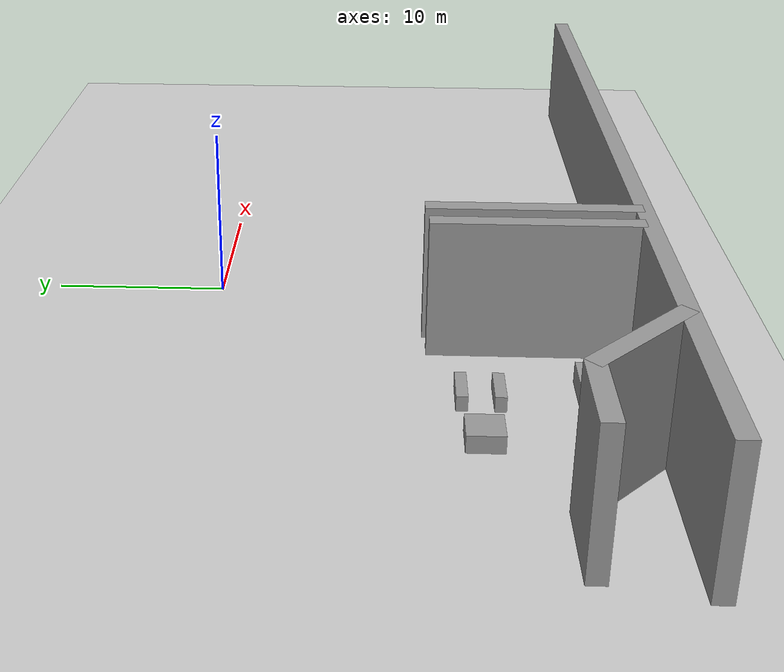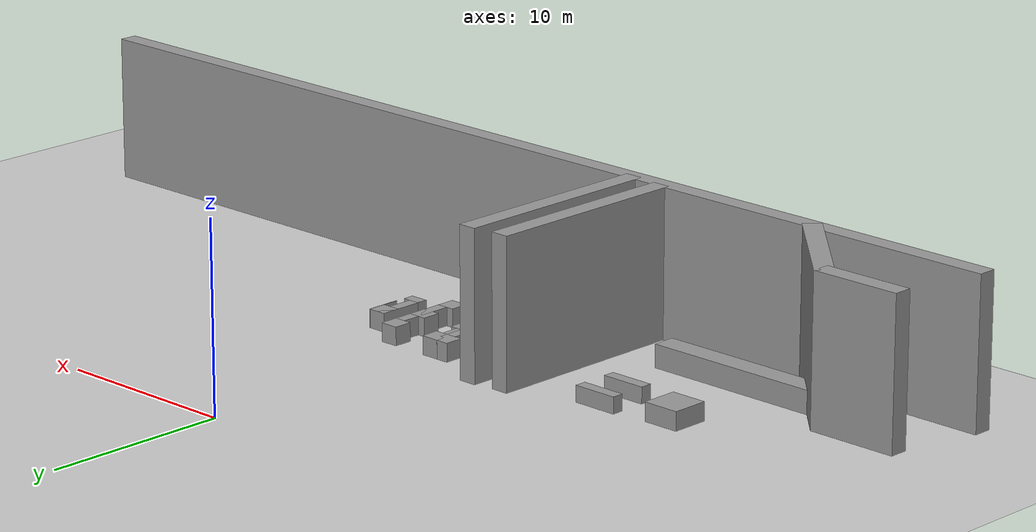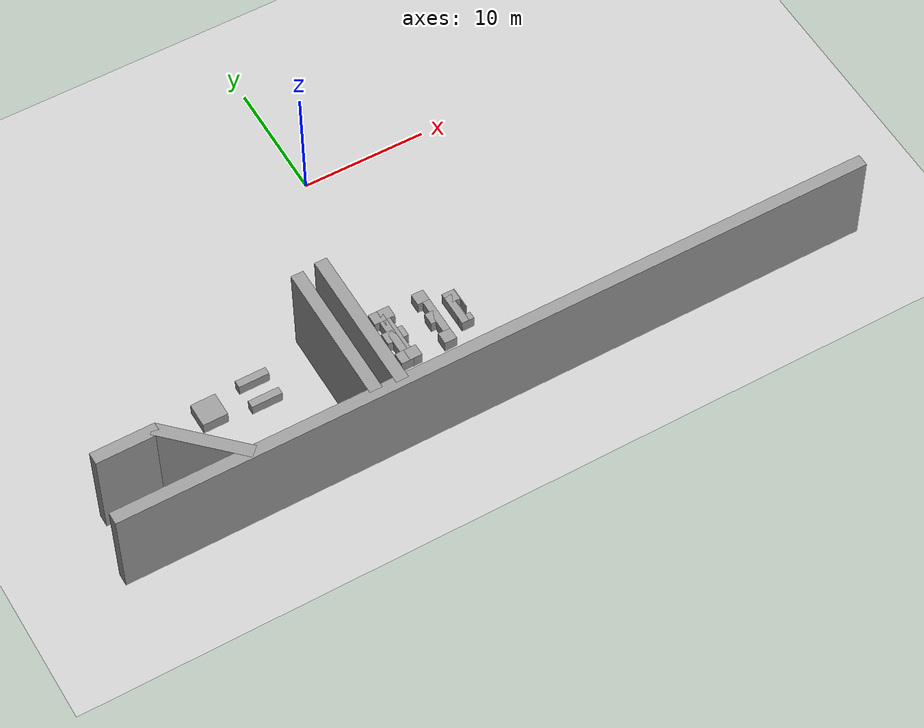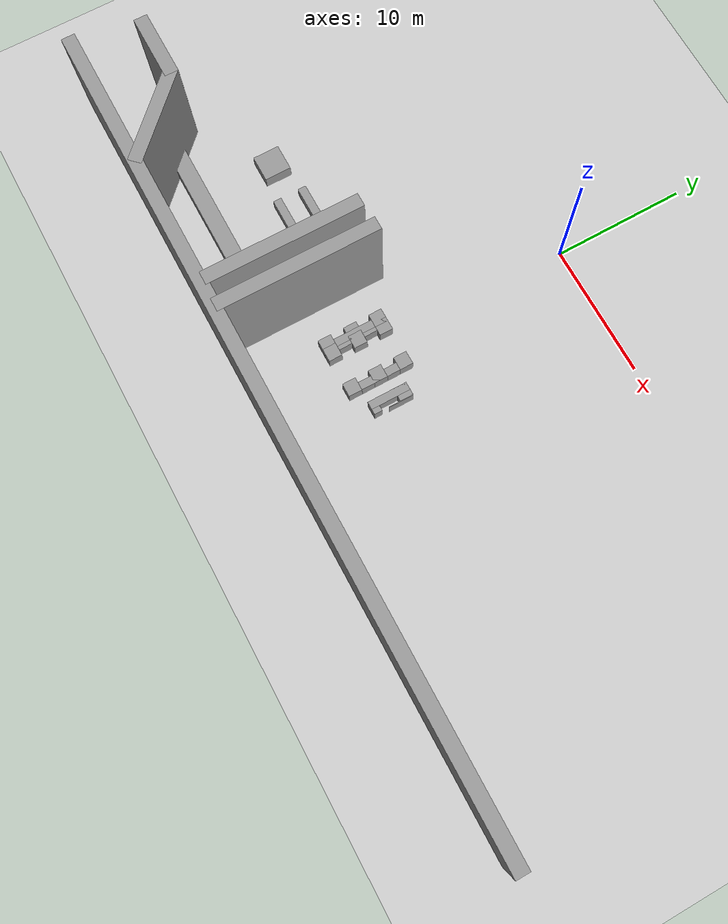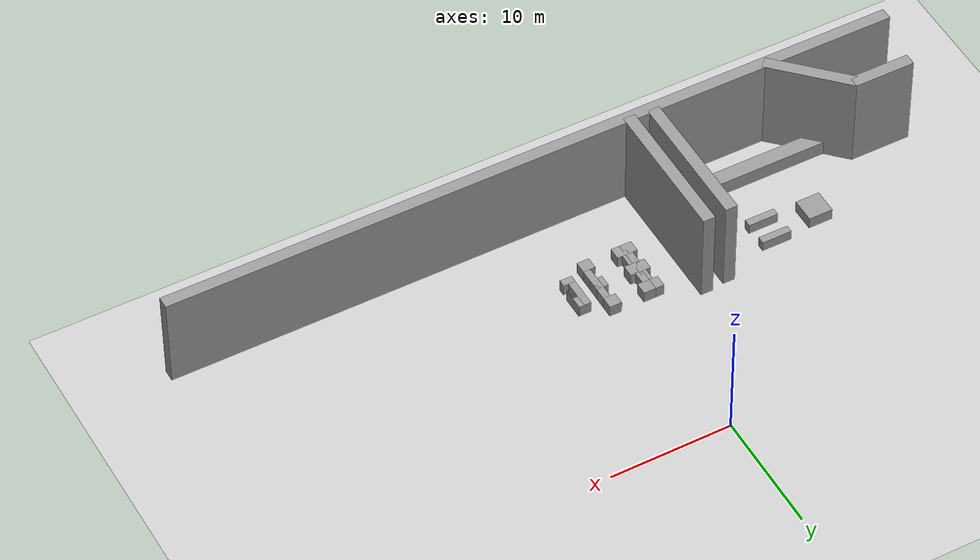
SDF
<sdf version="1.6">
 <world name="default">
  <model name="ground_plane">
   <static>1</static>
   <link name="link">
    <collision name="collision">
     <geometry><plane><normal>0 0 1</normal><size>100 100</size></plane></geometry>
     <surface>
      <contact><collide_bitmask>65535</collide_bitmask></contact>
      <friction><ode><mu>100</mu><mu2>50</mu2></ode></friction>
     </surface>
    </collision>
    <visual name="visual">
     <cast_shadows>0</cast_shadows>
     <geometry><plane><normal>0 0 1</normal><size>100 100</size></plane></geometry>
     <material>
      <script><uri>file://media/materials/scripts/gazebo.material</uri><name>Gazebo/Grey</name></script>
     </material>
    </visual>
   </link>
  </model>
  <model name="shelf_clone_clone_clone_clone_0_clone_clone_clone">
   <link name="link">
    <inertial>
     <mass>1</mass>
     <inertia>
      <ixx>0.166667</ixx>
      <ixy>0</ixy>
      <ixz>0</ixz>
      <iyy>0.166667</iyy>
      <iyz>0</iyz>
      <izz>0.166667</izz>
     </inertia>
    </inertial>
    <visual name="visual">
     <geometry><box><size>0.6246 2.46632 0.879745</size></box></geometry>
     <material>
      <script><name>Gazebo/Grey</name><uri>file://media/materials/scripts/gazebo.material</uri></script>
     </material>
    </visual>
    <collision name="collision">
     <geometry><box><size>0.6246 2.46632 0.879745</size></box></geometry>
     <surface>
      <friction>
       <ode><mu>1</mu><mu2>1</mu2><fdir1>0 0 0</fdir1><slip1>0</slip1><slip2>0</slip2></ode>
       <torsional>
        <coefficient>1</coefficient>
        <patch_radius>0</patch_radius>
        <surface_radius>0</surface_radius>
        <use_patch_radius>1</use_patch_radius>
        <ode><slip>0</slip></ode>
       </torsional>
      </friction>
      <bounce><restitution_coefficient>0</restitution_coefficient><threshold>1e+06</threshold></bounce>
      <contact>
       <collide_without_contact>0</collide_without_contact>
       <collide_without_contact_bitmask>1</collide_without_contact_bitmask>
       <collide_bitmask>1</collide_bitmask>
       <ode>
        <soft_cfm>0</soft_cfm>
        <soft_erp>0.2</soft_erp>
        <kp>1e+13</kp>
        <kd>1</kd>
        <max_vel>0.01</max_vel>
        <min_depth>0</min_depth>
       </ode>
       <bullet>
        <split_impulse>1</split_impulse>
        <split_impulse_penetration_threshold>-0.01</split_impulse_penetration_threshold>
        <soft_cfm>0</soft_cfm>
        <soft_erp>0.2</soft_erp>
        <kp>1e+13</kp>
        <kd>1</kd>
       </bullet>
      </contact>
     </surface>
    </collision>
   </link>
   <static>1</static>
   <pose>-12 -14 0.440412 0 0 -1.5708</pose>
  </model>
  <model name="shelf_clone_clone_clone_clone_0_clone_clone_clone_clone_0">
   <link name="link">
    <inertial>
     <mass>1</mass>
     <inertia>
      <ixx>0.166667</ixx>
      <ixy>0</ixy>
      <ixz>0</ixz>
      <iyy>0.166667</iyy>
      <iyz>0</iyz>
      <izz>0.166667</izz>
     </inertia>
    </inertial>
    <visual name="visual">
     <geometry><box><size>0.6246 2.46632 0.879745</size></box></geometry>
     <material>
      <script><name>Gazebo/Grey</name><uri>file://media/materials/scripts/gazebo.material</uri></script>
     </material>
    </visual>
    <collision name="collision">
     <geometry><box><size>0.6246 2.46632 0.879745</size></box></geometry>
     <surface>
      <friction>
       <ode><mu>1</mu><mu2>1</mu2><fdir1>0 0 0</fdir1><slip1>0</slip1><slip2>0</slip2></ode>
       <torsional>
        <coefficient>1</coefficient>
        <patch_radius>0</patch_radius>
        <surface_radius>0</surface_radius>
        <use_patch_radius>1</use_patch_radius>
        <ode><slip>0</slip></ode>
       </torsional>
      </friction>
      <bounce><restitution_coefficient>0</restitution_coefficient><threshold>1e+06</threshold></bounce>
      <contact>
       <collide_without_contact>0</collide_without_contact>
       <collide_without_contact_bitmask>1</collide_without_contact_bitmask>
       <collide_bitmask>1</collide_bitmask>
       <ode>
        <soft_cfm>0</soft_cfm>
        <soft_erp>0.2</soft_erp>
        <kp>1e+13</kp>
        <kd>1</kd>
        <max_vel>0.01</max_vel>
        <min_depth>0</min_depth>
       </ode>
       <bullet>
        <split_impulse>1</split_impulse>
        <split_impulse_penetration_threshold>-0.01</split_impulse_penetration_threshold>
        <soft_cfm>0</soft_cfm>
        <soft_erp>0.2</soft_erp>
        <kp>1e+13</kp>
        <kd>1</kd>
       </bullet>
      </contact>
     </surface>
    </collision>
   </link>
   <static>1</static>
   <pose>-12 -16 0.440412 0 0 -1.5708</pose>
  </model>
  <model name="Cube_3">
   <link name="link_1">
    <inertial>
     <mass>1</mass>
     <inertia>
      <ixx>0.166667</ixx>
      <ixy>0</ixy>
      <ixz>0</ixz>
      <iyy>0.166667</iyy>
      <iyz>0</iyz>
      <izz>0.166667</izz>
     </inertia>
    </inertial>
    <visual name="visual">
     <geometry><box><size>2 2 1</size></box></geometry>
     <material>
      <lighting>1</lighting>
      <script><uri>file://media/materials/scripts/gazebo.material</uri><name>Gazebo/Grey</name></script>
     </material>
    </visual>
    <collision name="collision">
     <geometry><box><size>2 2 1</size></box></geometry>
     <surface>
      <friction>
       <ode><mu>1</mu><mu2>1</mu2><fdir1>0 0 0</fdir1><slip1>0</slip1><slip2>0</slip2></ode>
       <torsional>
        <coefficient>1</coefficient>
        <patch_radius>0</patch_radius>
        <surface_radius>0</surface_radius>
        <use_patch_radius>1</use_patch_radius>
        <ode><slip>0</slip></ode>
       </torsional>
      </friction>
      <bounce><restitution_coefficient>0</restitution_coefficient><threshold>1e+06</threshold></bounce>
      <contact>
       <collide_without_contact>0</collide_without_contact>
       <collide_without_contact_bitmask>1</collide_without_contact_bitmask>
       <collide_bitmask>1</collide_bitmask>
       <ode>
        <soft_cfm>0</soft_cfm>
        <soft_erp>0.2</soft_erp>
        <kp>1e+13</kp>
        <kd>1</kd>
        <max_vel>0.01</max_vel>
        <min_depth>0</min_depth>
       </ode>
       <bullet>
        <split_impulse>1</split_impulse>
        <split_impulse_penetration_threshold>-0.01</split_impulse_penetration_threshold>
        <soft_cfm>0</soft_cfm>
        <soft_erp>0.2</soft_erp>
        <kp>1e+13</kp>
        <kd>1</kd>
       </bullet>
      </contact>
     </surface>
    </collision>
   </link>
   <static>1</static>
   <pose>-16 -15 0.495784 0 -0 0</pose>
  </model>
  <model name="wall1">
   <link name="link_0">
    <inertial>
     <mass>108.001</mass>
     <inertia><ixx>153</ixx><ixy>0</ixy><ixz>0</ixz><iyy>6705.03</iyy><iyz>0</iyz><izz>6570.03</izz></inertia>
    </inertial>
    <visual name="visual">
     <geometry><box><size>60.9879 1 7.99998</size></box></geometry>
     <material>
      <lighting>1</lighting>
      <script><uri>file://media/materials/scripts/gazebo.material</uri><name>Gazebo/Grey</name></script>
     </material>
    </visual>
    <collision name="collision">
     <geometry><box><size>60.9879 1 7.99998</size></box></geometry>
     <surface>
      <friction>
       <ode><mu>1</mu><mu2>1</mu2><fdir1>0 0 0</fdir1><slip1>0</slip1><slip2>0</slip2></ode>
       <torsional>
        <coefficient>1</coefficient>
        <patch_radius>0</patch_radius>
        <surface_radius>0</surface_radius>
        <use_patch_radius>1</use_patch_radius>
        <ode><slip>0</slip></ode>
       </torsional>
      </friction>
      <bounce><restitution_coefficient>0</restitution_coefficient><threshold>1e+06</threshold></bounce>
      <contact>
       <collide_without_contact>0</collide_without_contact>
       <collide_without_contact_bitmask>1</collide_without_contact_bitmask>
       <collide_bitmask>1</collide_bitmask>
       <ode>
        <soft_cfm>0</soft_cfm>
        <soft_erp>0.2</soft_erp>
        <kp>1e+13</kp>
        <kd>1</kd>
        <max_vel>0.01</max_vel>
        <min_depth>0</min_depth>
       </ode>
       <bullet>
        <split_impulse>1</split_impulse>
        <split_impulse_penetration_threshold>-0.01</split_impulse_penetration_threshold>
        <soft_cfm>0</soft_cfm>
        <soft_erp>0.2</soft_erp>
        <kp>1e+13</kp>
        <kd>1</kd>
       </bullet>
      </contact>
     </surface>
    </collision>
   </link>
   <static>1</static>
   <pose>3 -24 4 0 -0 0</pose>
  </model>
  <model name="tall_shelf_0_clone_clone_clone">
   <link name="link_0">
    <inertial>
     <mass>32</mass>
     <inertia><ixx>45.3334</ixx><ixy>0</ixy><ixz>0</ixz><iyy>213.334</iyy><iyz>0</iyz><izz>173.334</izz></inertia>
    </inertial>
    <visual name="visual">
     <geometry><box><size>7.3553 1 8</size></box></geometry>
     <material>
      <lighting>1</lighting>
      <script><uri>file://media/materials/scripts/gazebo.material</uri><name>Gazebo/Grey</name></script>
     </material>
    </visual>
    <collision name="collision">
     <geometry><box><size>7.3553 1 8</size></box></geometry>
     <surface>
      <friction>
       <ode><mu>1</mu><mu2>1</mu2><fdir1>0 0 0</fdir1><slip1>0</slip1><slip2>0</slip2></ode>
       <torsional>
        <coefficient>1</coefficient>
        <patch_radius>0</patch_radius>
        <surface_radius>0</surface_radius>
        <use_patch_radius>1</use_patch_radius>
        <ode><slip>0</slip></ode>
       </torsional>
      </friction>
      <bounce><restitution_coefficient>0</restitution_coefficient><threshold>1e+06</threshold></bounce>
      <contact>
       <collide_without_contact>0</collide_without_contact>
       <collide_without_contact_bitmask>1</collide_without_contact_bitmask>
       <collide_bitmask>1</collide_bitmask>
       <ode>
        <soft_cfm>0</soft_cfm>
        <soft_erp>0.2</soft_erp>
        <kp>1e+13</kp>
        <kd>1</kd>
        <max_vel>0.01</max_vel>
        <min_depth>0</min_depth>
       </ode>
       <bullet>
        <split_impulse>1</split_impulse>
        <split_impulse_penetration_threshold>-0.01</split_impulse_penetration_threshold>
        <soft_cfm>0</soft_cfm>
        <soft_erp>0.2</soft_erp>
        <kp>1e+13</kp>
        <kd>1</kd>
       </bullet>
      </contact>
     </surface>
    </collision>
   </link>
   <static>1</static>
   <pose>-19.2512 -21.458 4 0 0 -0.785404</pose>
  </model>
  <model name="tall_shelf_0_clone_clone_clone_clone">
   <link name="link_0">
    <inertial>
     <mass>32</mass>
     <inertia><ixx>45.3334</ixx><ixy>0</ixy><ixz>0</ixz><iyy>213.334</iyy><iyz>0</iyz><izz>173.334</izz></inertia>
    </inertial>
    <visual name="visual">
     <geometry><box><size>5.00409 1 8</size></box></geometry>
     <material>
      <lighting>1</lighting>
      <script><uri>file://media/materials/scripts/gazebo.material</uri><name>Gazebo/Grey</name></script>
     </material>
    </visual>
    <collision name="collision">
     <geometry><box><size>5.00409 1 8</size></box></geometry>
     <surface>
      <friction>
       <ode><mu>1</mu><mu2>1</mu2><fdir1>0 0 0</fdir1><slip1>0</slip1><slip2>0</slip2></ode>
       <torsional>
        <coefficient>1</coefficient>
        <patch_radius>0</patch_radius>
        <surface_radius>0</surface_radius>
        <use_patch_radius>1</use_patch_radius>
        <ode><slip>0</slip></ode>
       </torsional>
      </friction>
      <bounce><restitution_coefficient>0</restitution_coefficient><threshold>1e+06</threshold></bounce>
      <contact>
       <collide_without_contact>0</collide_without_contact>
       <collide_without_contact_bitmask>1</collide_without_contact_bitmask>
       <collide_bitmask>1</collide_bitmask>
       <ode>
        <soft_cfm>0</soft_cfm>
        <soft_erp>0.2</soft_erp>
        <kp>1e+13</kp>
        <kd>1</kd>
        <max_vel>0.01</max_vel>
        <min_depth>0</min_depth>
       </ode>
       <bullet>
        <split_impulse>1</split_impulse>
        <split_impulse_penetration_threshold>-0.01</split_impulse_penetration_threshold>
        <soft_cfm>0</soft_cfm>
        <soft_erp>0.2</soft_erp>
        <kp>1e+13</kp>
        <kd>1</kd>
       </bullet>
      </contact>
     </surface>
    </collision>
   </link>
   <static>1</static>
   <pose>-24 -19 4 0 0 -6e-06</pose>
  </model>
  <model name="wall2_0_clone">
   <link name="link_0">
    <inertial>
     <mass>92.0004</mass>
     <inertia><ixx>4178.36</ixx><ixy>0</ixy><ixz>0</ixz><iyy>130.334</iyy><iyz>0</iyz><izz>4063.36</izz></inertia>
    </inertial>
    <visual name="visual">
     <geometry><box><size>1 11.5424 8</size></box></geometry>
     <material>
      <lighting>1</lighting>
      <script><uri>file://media/materials/scripts/gazebo.material</uri><name>Gazebo/Grey</name></script>
     </material>
    </visual>
    <collision name="collision">
     <geometry><box><size>1 11.5424 8</size></box></geometry>
     <surface>
      <friction>
       <ode><mu>1</mu><mu2>1</mu2><fdir1>0 0 0</fdir1><slip1>0</slip1><slip2>0</slip2></ode>
       <torsional>
        <coefficient>1</coefficient>
        <patch_radius>0</patch_radius>
        <surface_radius>0</surface_radius>
        <use_patch_radius>1</use_patch_radius>
        <ode><slip>0</slip></ode>
       </torsional>
      </friction>
      <bounce><restitution_coefficient>0</restitution_coefficient><threshold>1e+06</threshold></bounce>
      <contact>
       <collide_without_contact>0</collide_without_contact>
       <collide_without_contact_bitmask>1</collide_without_contact_bitmask>
       <collide_bitmask>1</collide_bitmask>
       <ode>
        <soft_cfm>0</soft_cfm>
        <soft_erp>0.2</soft_erp>
        <kp>1e+13</kp>
        <kd>1</kd>
        <max_vel>0.01</max_vel>
        <min_depth>0</min_depth>
       </ode>
       <bullet>
        <split_impulse>1</split_impulse>
        <split_impulse_penetration_threshold>-0.01</split_impulse_penetration_threshold>
        <soft_cfm>0</soft_cfm>
        <soft_erp>0.2</soft_erp>
        <kp>1e+13</kp>
        <kd>1</kd>
       </bullet>
      </contact>
     </surface>
    </collision>
   </link>
   <static>1</static>
   <pose>-7 -18.0297 4 0 -0 0</pose>
  </model>
  <model name="wall2_0_clone_0">
   <link name="link_0">
    <inertial>
     <mass>92.0004</mass>
     <inertia><ixx>4178.36</ixx><ixy>0</ixy><ixz>0</ixz><iyy>130.334</iyy><iyz>0</iyz><izz>4063.36</izz></inertia>
    </inertial>
    <visual name="visual">
     <geometry><box><size>1 11.9104 8</size></box></geometry>
     <material>
      <lighting>1</lighting>
      <script><uri>file://media/materials/scripts/gazebo.material</uri><name>Gazebo/Grey</name></script>
     </material>
    </visual>
    <collision name="collision">
     <geometry><box><size>1 11.9104 8</size></box></geometry>
     <surface>
      <friction>
       <ode><mu>1</mu><mu2>1</mu2><fdir1>0 0 0</fdir1><slip1>0</slip1><slip2>0</slip2></ode>
       <torsional>
        <coefficient>1</coefficient>
        <patch_radius>0</patch_radius>
        <surface_radius>0</surface_radius>
        <use_patch_radius>1</use_patch_radius>
        <ode><slip>0</slip></ode>
       </torsional>
      </friction>
      <bounce><restitution_coefficient>0</restitution_coefficient><threshold>1e+06</threshold></bounce>
      <contact>
       <collide_without_contact>0</collide_without_contact>
       <collide_without_contact_bitmask>1</collide_without_contact_bitmask>
       <collide_bitmask>1</collide_bitmask>
       <ode>
        <soft_cfm>0</soft_cfm>
        <soft_erp>0.2</soft_erp>
        <kp>1e+13</kp>
        <kd>1</kd>
        <max_vel>0.01</max_vel>
        <min_depth>0</min_depth>
       </ode>
       <bullet>
        <split_impulse>1</split_impulse>
        <split_impulse_penetration_threshold>-0.01</split_impulse_penetration_threshold>
        <soft_cfm>0</soft_cfm>
        <soft_erp>0.2</soft_erp>
        <kp>1e+13</kp>
        <kd>1</kd>
       </bullet>
      </contact>
     </surface>
    </collision>
   </link>
   <static>1</static>
   <pose>-5 -18.0229 4 0 -0 0</pose>
  </model>
  <model name="checkout_lane_clone_3">
   <link name="link_0">
    <inertial>
     <mass>1.78918</mass>
     <inertia><ixx>1.49098</ixx><ixy>0</ixy><ixz>0</ixz><iyy>0.202135</iyy><iyz>0</iyz><izz>1.39492</izz></inertia>
    </inertial>
    <pose>-0.28217 -0.089875 0 0 -0 0</pose>
    <visual name="visual">
     <geometry><box><size>0.596422 3 1</size></box></geometry>
     <material>
      <lighting>1</lighting>
      <script><uri>file://media/materials/scripts/gazebo.material</uri><name>Gazebo/Grey</name></script>
     </material>
    </visual>
    <collision name="collision">
     <geometry><box><size>0.596422 3 1</size></box></geometry>
     <surface>
      <friction>
       <ode><mu>1</mu><mu2>1</mu2><fdir1>0 0 0</fdir1><slip1>0</slip1><slip2>0</slip2></ode>
       <torsional>
        <coefficient>1</coefficient>
        <patch_radius>0</patch_radius>
        <surface_radius>0</surface_radius>
        <use_patch_radius>1</use_patch_radius>
        <ode><slip>0</slip></ode>
       </torsional>
      </friction>
      <bounce><restitution_coefficient>0</restitution_coefficient><threshold>1e+06</threshold></bounce>
      <contact>
       <collide_without_contact>0</collide_without_contact>
       <collide_without_contact_bitmask>1</collide_without_contact_bitmask>
       <collide_bitmask>1</collide_bitmask>
       <ode>
        <soft_cfm>0</soft_cfm>
        <soft_erp>0.2</soft_erp>
        <kp>1e+13</kp>
        <kd>1</kd>
        <max_vel>0.01</max_vel>
        <min_depth>0</min_depth>
       </ode>
       <bullet>
        <split_impulse>1</split_impulse>
        <split_impulse_penetration_threshold>-0.01</split_impulse_penetration_threshold>
        <soft_cfm>0</soft_cfm>
        <soft_erp>0.2</soft_erp>
        <kp>1e+13</kp>
        <kd>1</kd>
       </bullet>
      </contact>
     </surface>
    </collision>
   </link>
   <link name="link_1">
    <inertial>
     <mass>0.599725</mass>
     <inertia>
      <ixx>0.067952</ixx>
      <ixy>0</ixy>
      <ixz>0</ixz>
      <iyy>0.0999541</iyy>
      <iyz>0</iyz>
      <izz>0.067952</izz>
     </inertia>
    </inertial>
    <pose>-0.080941 -1.29052 0 0 -0 0</pose>
    <visual name="visual">
     <geometry><box><size>1 0.599721 1</size></box></geometry>
     <material>
      <lighting>1</lighting>
      <script><uri>file://media/materials/scripts/gazebo.material</uri><name>Gazebo/Grey</name></script>
     </material>
    </visual>
    <collision name="collision">
     <geometry><box><size>1 0.599721 1</size></box></geometry>
     <surface>
      <friction>
       <ode><mu>1</mu><mu2>1</mu2><fdir1>0 0 0</fdir1><slip1>0</slip1><slip2>0</slip2></ode>
       <torsional>
        <coefficient>1</coefficient>
        <patch_radius>0</patch_radius>
        <surface_radius>0</surface_radius>
        <use_patch_radius>1</use_patch_radius>
        <ode><slip>0</slip></ode>
       </torsional>
      </friction>
      <bounce><restitution_coefficient>0</restitution_coefficient><threshold>1e+06</threshold></bounce>
      <contact>
       <collide_without_contact>0</collide_without_contact>
       <collide_without_contact_bitmask>1</collide_without_contact_bitmask>
       <collide_bitmask>1</collide_bitmask>
       <ode>
        <soft_cfm>0</soft_cfm>
        <soft_erp>0.2</soft_erp>
        <kp>1e+13</kp>
        <kd>1</kd>
        <max_vel>0.01</max_vel>
        <min_depth>0</min_depth>
       </ode>
       <bullet>
        <split_impulse>1</split_impulse>
        <split_impulse_penetration_threshold>-0.01</split_impulse_penetration_threshold>
        <soft_cfm>0</soft_cfm>
        <soft_erp>0.2</soft_erp>
        <kp>1e+13</kp>
        <kd>1</kd>
       </bullet>
      </contact>
     </surface>
    </collision>
   </link>
   <link name="link_2">
    <inertial>
     <mass>1</mass>
     <inertia>
      <ixx>0.166667</ixx>
      <ixy>0</ixy>
      <ixz>0</ixz>
      <iyy>0.166667</iyy>
      <iyz>0</iyz>
      <izz>0.166667</izz>
     </inertia>
    </inertial>
    <pose>-0.079867 0.912971 0 0 -0 0</pose>
    <visual name="visual">
     <geometry><box><size>1 1 1</size></box></geometry>
     <material>
      <lighting>1</lighting>
      <script><uri>file://media/materials/scripts/gazebo.material</uri><name>Gazebo/Grey</name></script>
     </material>
    </visual>
    <collision name="collision">
     <geometry><box><size>1 1 1</size></box></geometry>
     <surface>
      <friction>
       <ode><mu>1</mu><mu2>1</mu2><fdir1>0 0 0</fdir1><slip1>0</slip1><slip2>0</slip2></ode>
       <torsional>
        <coefficient>1</coefficient>
        <patch_radius>0</patch_radius>
        <surface_radius>0</surface_radius>
        <use_patch_radius>1</use_patch_radius>
        <ode><slip>0</slip></ode>
       </torsional>
      </friction>
      <bounce><restitution_coefficient>0</restitution_coefficient><threshold>1e+06</threshold></bounce>
      <contact>
       <collide_without_contact>0</collide_without_contact>
       <collide_without_contact_bitmask>1</collide_without_contact_bitmask>
       <collide_bitmask>1</collide_bitmask>
       <ode>
        <soft_cfm>0</soft_cfm>
        <soft_erp>0.2</soft_erp>
        <kp>1e+13</kp>
        <kd>1</kd>
        <max_vel>0.01</max_vel>
        <min_depth>0</min_depth>
       </ode>
       <bullet>
        <split_impulse>1</split_impulse>
        <split_impulse_penetration_threshold>-0.01</split_impulse_penetration_threshold>
        <soft_cfm>0</soft_cfm>
        <soft_erp>0.2</soft_erp>
        <kp>1e+13</kp>
        <kd>1</kd>
       </bullet>
      </contact>
     </surface>
    </collision>
   </link>
   <link name="link_3">
    <inertial>
     <mass>0.0872941</mass>
     <inertia>
      <ixx>0.0332862</ixx>
      <ixy>0</ixy>
      <ixz>0</ixz>
      <iyy>0.00729008</iyy>
      <iyz>0</iyz>
      <izz>0.0260273</izz>
     </inertia>
    </inertial>
    <pose>0.442979 0.467403 0 0 -0 0</pose>
    <visual name="visual">
     <geometry><box><size>0.046273 1.89096 1</size></box></geometry>
     <material>
      <lighting>1</lighting>
      <script><uri>file://media/materials/scripts/gazebo.material</uri><name>Gazebo/Grey</name></script>
     </material>
    </visual>
    <collision name="collision">
     <geometry><box><size>0.046273 1.89096 1</size></box></geometry>
     <surface>
      <friction>
       <ode><mu>1</mu><mu2>1</mu2><fdir1>0 0 0</fdir1><slip1>0</slip1><slip2>0</slip2></ode>
       <torsional>
        <coefficient>1</coefficient>
        <patch_radius>0</patch_radius>
        <surface_radius>0</surface_radius>
        <use_patch_radius>1</use_patch_radius>
        <ode><slip>0</slip></ode>
       </torsional>
      </friction>
      <bounce><restitution_coefficient>0</restitution_coefficient><threshold>1e+06</threshold></bounce>
      <contact>
       <collide_without_contact>0</collide_without_contact>
       <collide_without_contact_bitmask>1</collide_without_contact_bitmask>
       <collide_bitmask>1</collide_bitmask>
       <ode>
        <soft_cfm>0</soft_cfm>
        <soft_erp>0.2</soft_erp>
        <kp>1e+13</kp>
        <kd>1</kd>
        <max_vel>0.01</max_vel>
        <min_depth>0</min_depth>
       </ode>
       <bullet>
        <split_impulse>1</split_impulse>
        <split_impulse_penetration_threshold>-0.01</split_impulse_penetration_threshold>
        <soft_cfm>0</soft_cfm>
        <soft_erp>0.2</soft_erp>
        <kp>1e+13</kp>
        <kd>1</kd>
       </bullet>
      </contact>
     </surface>
    </collision>
   </link>
   <static>1</static>
   <pose>4 -16 0.5 0 -0 0</pose>
  </model>
  <model name="self_checkout_0">
   <link name="link_4">
    <inertial>
     <mass>1.77471</mass>
     <inertia><ixx>1.47892</ixx><ixy>0</ixy><ixz>0</ixz><iyy>0.199646</iyy><iyz>0</iyz><izz>1.38278</izz></inertia>
    </inertial>
    <pose>-0.152274 0.000325 0 0 -0 0</pose>
    <visual name="visual">
     <geometry><box><size>0.591563 3 1</size></box></geometry>
     <material>
      <lighting>1</lighting>
      <script><uri>file://media/materials/scripts/gazebo.material</uri><name>Gazebo/Grey</name></script>
     </material>
    </visual>
    <collision name="collision">
     <geometry><box><size>0.591563 3 1</size></box></geometry>
     <surface>
      <friction>
       <ode><mu>1</mu><mu2>1</mu2><fdir1>0 0 0</fdir1><slip1>0</slip1><slip2>0</slip2></ode>
       <torsional>
        <coefficient>1</coefficient>
        <patch_radius>0</patch_radius>
        <surface_radius>0</surface_radius>
        <use_patch_radius>1</use_patch_radius>
        <ode><slip>0</slip></ode>
       </torsional>
      </friction>
      <bounce><restitution_coefficient>0</restitution_coefficient><threshold>1e+06</threshold></bounce>
      <contact>
       <collide_without_contact>0</collide_without_contact>
       <collide_without_contact_bitmask>1</collide_without_contact_bitmask>
       <collide_bitmask>1</collide_bitmask>
       <ode>
        <soft_cfm>0</soft_cfm>
        <soft_erp>0.2</soft_erp>
        <kp>1e+13</kp>
        <kd>1</kd>
        <max_vel>0.01</max_vel>
        <min_depth>0</min_depth>
       </ode>
       <bullet>
        <split_impulse>1</split_impulse>
        <split_impulse_penetration_threshold>-0.01</split_impulse_penetration_threshold>
        <soft_cfm>0</soft_cfm>
        <soft_erp>0.2</soft_erp>
        <kp>1e+13</kp>
        <kd>1</kd>
       </bullet>
      </contact>
     </surface>
    </collision>
   </link>
   <link name="link_5">
    <inertial>
     <mass>1</mass>
     <inertia>
      <ixx>0.166667</ixx>
      <ixy>0</ixy>
      <ixz>0</ixz>
      <iyy>0.166667</iyy>
      <iyz>0</iyz>
      <izz>0.166667</izz>
     </inertia>
    </inertial>
    <pose>0.051174 -1.99968 0 0 -0 0</pose>
    <visual name="visual">
     <geometry><box><size>1 1 1</size></box></geometry>
     <material>
      <lighting>1</lighting>
      <script><uri>file://media/materials/scripts/gazebo.material</uri><name>Gazebo/Grey</name></script>
     </material>
    </visual>
    <collision name="collision">
     <geometry><box><size>1 1 1</size></box></geometry>
     <surface>
      <friction>
       <ode><mu>1</mu><mu2>1</mu2><fdir1>0 0 0</fdir1><slip1>0</slip1><slip2>0</slip2></ode>
       <torsional>
        <coefficient>1</coefficient>
        <patch_radius>0</patch_radius>
        <surface_radius>0</surface_radius>
        <use_patch_radius>1</use_patch_radius>
        <ode><slip>0</slip></ode>
       </torsional>
      </friction>
      <bounce><restitution_coefficient>0</restitution_coefficient><threshold>1e+06</threshold></bounce>
      <contact>
       <collide_without_contact>0</collide_without_contact>
       <collide_without_contact_bitmask>1</collide_without_contact_bitmask>
       <collide_bitmask>1</collide_bitmask>
       <ode>
        <soft_cfm>0</soft_cfm>
        <soft_erp>0.2</soft_erp>
        <kp>1e+13</kp>
        <kd>1</kd>
        <max_vel>0.01</max_vel>
        <min_depth>0</min_depth>
       </ode>
       <bullet>
        <split_impulse>1</split_impulse>
        <split_impulse_penetration_threshold>-0.01</split_impulse_penetration_threshold>
        <soft_cfm>0</soft_cfm>
        <soft_erp>0.2</soft_erp>
        <kp>1e+13</kp>
        <kd>1</kd>
       </bullet>
      </contact>
     </surface>
    </collision>
   </link>
   <link name="link_6">
    <inertial>
     <mass>1</mass>
     <inertia>
      <ixx>0.166667</ixx>
      <ixy>0</ixy>
      <ixz>0</ixz>
      <iyy>0.166667</iyy>
      <iyz>0</iyz>
      <izz>0.166667</izz>
     </inertia>
    </inertial>
    <pose>0.050815 -0.000997 0 0 -0 0</pose>
    <visual name="visual">
     <geometry><box><size>1 1 1</size></box></geometry>
     <material>
      <lighting>1</lighting>
      <script><uri>file://media/materials/scripts/gazebo.material</uri><name>Gazebo/Grey</name></script>
     </material>
    </visual>
    <collision name="collision">
     <geometry><box><size>1 1 1</size></box></geometry>
     <surface>
      <friction>
       <ode><mu>1</mu><mu2>1</mu2><fdir1>0 0 0</fdir1><slip1>0</slip1><slip2>0</slip2></ode>
       <torsional>
        <coefficient>1</coefficient>
        <patch_radius>0</patch_radius>
        <surface_radius>0</surface_radius>
        <use_patch_radius>1</use_patch_radius>
        <ode><slip>0</slip></ode>
       </torsional>
      </friction>
      <bounce><restitution_coefficient>0</restitution_coefficient><threshold>1e+06</threshold></bounce>
      <contact>
       <collide_without_contact>0</collide_without_contact>
       <collide_without_contact_bitmask>1</collide_without_contact_bitmask>
       <collide_bitmask>1</collide_bitmask>
       <ode>
        <soft_cfm>0</soft_cfm>
        <soft_erp>0.2</soft_erp>
        <kp>1e+13</kp>
        <kd>1</kd>
        <max_vel>0.01</max_vel>
        <min_depth>0</min_depth>
       </ode>
       <bullet>
        <split_impulse>1</split_impulse>
        <split_impulse_penetration_threshold>-0.01</split_impulse_penetration_threshold>
        <soft_cfm>0</soft_cfm>
        <soft_erp>0.2</soft_erp>
        <kp>1e+13</kp>
        <kd>1</kd>
       </bullet>
      </contact>
     </surface>
    </collision>
   </link>
   <link name="link_7">
    <inertial>
     <mass>1</mass>
     <inertia>
      <ixx>0.166667</ixx>
      <ixy>0</ixy>
      <ixz>0</ixz>
      <iyy>0.166667</iyy>
      <iyz>0</iyz>
      <izz>0.166667</izz>
     </inertia>
    </inertial>
    <pose>0.050285 2.00033 0 0 -0 0</pose>
    <visual name="visual">
     <geometry><box><size>1 1 1</size></box></geometry>
     <material>
      <lighting>1</lighting>
      <script><uri>file://media/materials/scripts/gazebo.material</uri><name>Gazebo/Grey</name></script>
     </material>
    </visual>
    <collision name="collision">
     <geometry><box><size>1 1 1</size></box></geometry>
     <surface>
      <friction>
       <ode><mu>1</mu><mu2>1</mu2><fdir1>0 0 0</fdir1><slip1>0</slip1><slip2>0</slip2></ode>
       <torsional>
        <coefficient>1</coefficient>
        <patch_radius>0</patch_radius>
        <surface_radius>0</surface_radius>
        <use_patch_radius>1</use_patch_radius>
        <ode><slip>0</slip></ode>
       </torsional>
      </friction>
      <bounce><restitution_coefficient>0</restitution_coefficient><threshold>1e+06</threshold></bounce>
      <contact>
       <collide_without_contact>0</collide_without_contact>
       <collide_without_contact_bitmask>1</collide_without_contact_bitmask>
       <collide_bitmask>1</collide_bitmask>
       <ode>
        <soft_cfm>0</soft_cfm>
        <soft_erp>0.2</soft_erp>
        <kp>1e+13</kp>
        <kd>1</kd>
        <max_vel>0.01</max_vel>
        <min_depth>0</min_depth>
       </ode>
       <bullet>
        <split_impulse>1</split_impulse>
        <split_impulse_penetration_threshold>-0.01</split_impulse_penetration_threshold>
        <soft_cfm>0</soft_cfm>
        <soft_erp>0.2</soft_erp>
        <kp>1e+13</kp>
        <kd>1</kd>
       </bullet>
      </contact>
     </surface>
    </collision>
   </link>
   <static>1</static>
   <pose>2 -16 0.5 0 0 -3.14159</pose>
  </model>
  <model name="self_checkout_0_clone">
   <link name="link_4">
    <inertial>
     <mass>1.77471</mass>
     <inertia><ixx>1.47892</ixx><ixy>0</ixy><ixz>0</ixz><iyy>0.199646</iyy><iyz>0</iyz><izz>1.38278</izz></inertia>
    </inertial>
    <pose>-0.152274 0.000325 0 0 -0 0</pose>
    <visual name="visual">
     <geometry><box><size>0.591563 3 1</size></box></geometry>
     <material>
      <lighting>1</lighting>
      <script><uri>file://media/materials/scripts/gazebo.material</uri><name>Gazebo/Grey</name></script>
     </material>
    </visual>
    <collision name="collision">
     <geometry><box><size>0.591563 3 1</size></box></geometry>
     <surface>
      <friction>
       <ode><mu>1</mu><mu2>1</mu2><fdir1>0 0 0</fdir1><slip1>0</slip1><slip2>0</slip2></ode>
       <torsional>
        <coefficient>1</coefficient>
        <patch_radius>0</patch_radius>
        <surface_radius>0</surface_radius>
        <use_patch_radius>1</use_patch_radius>
        <ode><slip>0</slip></ode>
       </torsional>
      </friction>
      <bounce><restitution_coefficient>0</restitution_coefficient><threshold>1e+06</threshold></bounce>
      <contact>
       <collide_without_contact>0</collide_without_contact>
       <collide_without_contact_bitmask>1</collide_without_contact_bitmask>
       <collide_bitmask>1</collide_bitmask>
       <ode>
        <soft_cfm>0</soft_cfm>
        <soft_erp>0.2</soft_erp>
        <kp>1e+13</kp>
        <kd>1</kd>
        <max_vel>0.01</max_vel>
        <min_depth>0</min_depth>
       </ode>
       <bullet>
        <split_impulse>1</split_impulse>
        <split_impulse_penetration_threshold>-0.01</split_impulse_penetration_threshold>
        <soft_cfm>0</soft_cfm>
        <soft_erp>0.2</soft_erp>
        <kp>1e+13</kp>
        <kd>1</kd>
       </bullet>
      </contact>
     </surface>
    </collision>
   </link>
   <link name="link_5">
    <inertial>
     <mass>1</mass>
     <inertia>
      <ixx>0.166667</ixx>
      <ixy>0</ixy>
      <ixz>0</ixz>
      <iyy>0.166667</iyy>
      <iyz>0</iyz>
      <izz>0.166667</izz>
     </inertia>
    </inertial>
    <pose>0.051174 -1.99968 0 0 -0 0</pose>
    <visual name="visual">
     <geometry><box><size>1 1 1</size></box></geometry>
     <material>
      <lighting>1</lighting>
      <script><uri>file://media/materials/scripts/gazebo.material</uri><name>Gazebo/Grey</name></script>
     </material>
    </visual>
    <collision name="collision">
     <geometry><box><size>1 1 1</size></box></geometry>
     <surface>
      <friction>
       <ode><mu>1</mu><mu2>1</mu2><fdir1>0 0 0</fdir1><slip1>0</slip1><slip2>0</slip2></ode>
       <torsional>
        <coefficient>1</coefficient>
        <patch_radius>0</patch_radius>
        <surface_radius>0</surface_radius>
        <use_patch_radius>1</use_patch_radius>
        <ode><slip>0</slip></ode>
       </torsional>
      </friction>
      <bounce><restitution_coefficient>0</restitution_coefficient><threshold>1e+06</threshold></bounce>
      <contact>
       <collide_without_contact>0</collide_without_contact>
       <collide_without_contact_bitmask>1</collide_without_contact_bitmask>
       <collide_bitmask>1</collide_bitmask>
       <ode>
        <soft_cfm>0</soft_cfm>
        <soft_erp>0.2</soft_erp>
        <kp>1e+13</kp>
        <kd>1</kd>
        <max_vel>0.01</max_vel>
        <min_depth>0</min_depth>
       </ode>
       <bullet>
        <split_impulse>1</split_impulse>
        <split_impulse_penetration_threshold>-0.01</split_impulse_penetration_threshold>
        <soft_cfm>0</soft_cfm>
        <soft_erp>0.2</soft_erp>
        <kp>1e+13</kp>
        <kd>1</kd>
       </bullet>
      </contact>
     </surface>
    </collision>
   </link>
   <link name="link_6">
    <inertial>
     <mass>1</mass>
     <inertia>
      <ixx>0.166667</ixx>
      <ixy>0</ixy>
      <ixz>0</ixz>
      <iyy>0.166667</iyy>
      <iyz>0</iyz>
      <izz>0.166667</izz>
     </inertia>
    </inertial>
    <pose>0.050815 -0.000997 0 0 -0 0</pose>
    <visual name="visual">
     <geometry><box><size>1 1 1</size></box></geometry>
     <material>
      <lighting>1</lighting>
      <script><uri>file://media/materials/scripts/gazebo.material</uri><name>Gazebo/Grey</name></script>
     </material>
    </visual>
    <collision name="collision">
     <geometry><box><size>1 1 1</size></box></geometry>
     <surface>
      <friction>
       <ode><mu>1</mu><mu2>1</mu2><fdir1>0 0 0</fdir1><slip1>0</slip1><slip2>0</slip2></ode>
       <torsional>
        <coefficient>1</coefficient>
        <patch_radius>0</patch_radius>
        <surface_radius>0</surface_radius>
        <use_patch_radius>1</use_patch_radius>
        <ode><slip>0</slip></ode>
       </torsional>
      </friction>
      <bounce><restitution_coefficient>0</restitution_coefficient><threshold>1e+06</threshold></bounce>
      <contact>
       <collide_without_contact>0</collide_without_contact>
       <collide_without_contact_bitmask>1</collide_without_contact_bitmask>
       <collide_bitmask>1</collide_bitmask>
       <ode>
        <soft_cfm>0</soft_cfm>
        <soft_erp>0.2</soft_erp>
        <kp>1e+13</kp>
        <kd>1</kd>
        <max_vel>0.01</max_vel>
        <min_depth>0</min_depth>
       </ode>
       <bullet>
        <split_impulse>1</split_impulse>
        <split_impulse_penetration_threshold>-0.01</split_impulse_penetration_threshold>
        <soft_cfm>0</soft_cfm>
        <soft_erp>0.2</soft_erp>
        <kp>1e+13</kp>
        <kd>1</kd>
       </bullet>
      </contact>
     </surface>
    </collision>
   </link>
   <link name="link_7">
    <inertial>
     <mass>1</mass>
     <inertia>
      <ixx>0.166667</ixx>
      <ixy>0</ixy>
      <ixz>0</ixz>
      <iyy>0.166667</iyy>
      <iyz>0</iyz>
      <izz>0.166667</izz>
     </inertia>
    </inertial>
    <pose>0.050285 2.00033 0 0 -0 0</pose>
    <visual name="visual">
     <geometry><box><size>1 1 1</size></box></geometry>
     <material>
      <lighting>1</lighting>
      <script><uri>file://media/materials/scripts/gazebo.material</uri><name>Gazebo/Grey</name></script>
     </material>
    </visual>
    <collision name="collision">
     <geometry><box><size>1 1 1</size></box></geometry>
     <surface>
      <friction>
       <ode><mu>1</mu><mu2>1</mu2><fdir1>0 0 0</fdir1><slip1>0</slip1><slip2>0</slip2></ode>
       <torsional>
        <coefficient>1</coefficient>
        <patch_radius>0</patch_radius>
        <surface_radius>0</surface_radius>
        <use_patch_radius>1</use_patch_radius>
        <ode><slip>0</slip></ode>
       </torsional>
      </friction>
      <bounce><restitution_coefficient>0</restitution_coefficient><threshold>1e+06</threshold></bounce>
      <contact>
       <collide_without_contact>0</collide_without_contact>
       <collide_without_contact_bitmask>1</collide_without_contact_bitmask>
       <collide_bitmask>1</collide_bitmask>
       <ode>
        <soft_cfm>0</soft_cfm>
        <soft_erp>0.2</soft_erp>
        <kp>1e+13</kp>
        <kd>1</kd>
        <max_vel>0.01</max_vel>
        <min_depth>0</min_depth>
       </ode>
       <bullet>
        <split_impulse>1</split_impulse>
        <split_impulse_penetration_threshold>-0.01</split_impulse_penetration_threshold>
        <soft_cfm>0</soft_cfm>
        <soft_erp>0.2</soft_erp>
        <kp>1e+13</kp>
        <kd>1</kd>
       </bullet>
      </contact>
     </surface>
    </collision>
   </link>
   <static>1</static>
   <pose>-0.999996 -16 0.5 0 -0 3e-06</pose>
  </model>
  <model name="self_checkout_0_clone_0">
   <link name="link_4">
    <inertial>
     <mass>1.77471</mass>
     <inertia><ixx>1.47892</ixx><ixy>0</ixy><ixz>0</ixz><iyy>0.199646</iyy><iyz>0</iyz><izz>1.38278</izz></inertia>
    </inertial>
    <pose>-0.152274 0.000325 0 0 -0 0</pose>
    <visual name="visual">
     <geometry><box><size>0.591563 3 1</size></box></geometry>
     <material>
      <lighting>1</lighting>
      <script><uri>file://media/materials/scripts/gazebo.material</uri><name>Gazebo/Grey</name></script>
     </material>
    </visual>
    <collision name="collision">
     <geometry><box><size>0.591563 3 1</size></box></geometry>
     <surface>
      <friction>
       <ode><mu>1</mu><mu2>1</mu2><fdir1>0 0 0</fdir1><slip1>0</slip1><slip2>0</slip2></ode>
       <torsional>
        <coefficient>1</coefficient>
        <patch_radius>0</patch_radius>
        <surface_radius>0</surface_radius>
        <use_patch_radius>1</use_patch_radius>
        <ode><slip>0</slip></ode>
       </torsional>
      </friction>
      <bounce><restitution_coefficient>0</restitution_coefficient><threshold>1e+06</threshold></bounce>
      <contact>
       <collide_without_contact>0</collide_without_contact>
       <collide_without_contact_bitmask>1</collide_without_contact_bitmask>
       <collide_bitmask>1</collide_bitmask>
       <ode>
        <soft_cfm>0</soft_cfm>
        <soft_erp>0.2</soft_erp>
        <kp>1e+13</kp>
        <kd>1</kd>
        <max_vel>0.01</max_vel>
        <min_depth>0</min_depth>
       </ode>
       <bullet>
        <split_impulse>1</split_impulse>
        <split_impulse_penetration_threshold>-0.01</split_impulse_penetration_threshold>
        <soft_cfm>0</soft_cfm>
        <soft_erp>0.2</soft_erp>
        <kp>1e+13</kp>
        <kd>1</kd>
       </bullet>
      </contact>
     </surface>
    </collision>
   </link>
   <link name="link_5">
    <inertial>
     <mass>1</mass>
     <inertia>
      <ixx>0.166667</ixx>
      <ixy>0</ixy>
      <ixz>0</ixz>
      <iyy>0.166667</iyy>
      <iyz>0</iyz>
      <izz>0.166667</izz>
     </inertia>
    </inertial>
    <pose>0.051174 -1.99968 0 0 -0 0</pose>
    <visual name="visual">
     <geometry><box><size>1 1 1</size></box></geometry>
     <material>
      <lighting>1</lighting>
      <script><uri>file://media/materials/scripts/gazebo.material</uri><name>Gazebo/Grey</name></script>
     </material>
    </visual>
    <collision name="collision">
     <geometry><box><size>1 1 1</size></box></geometry>
     <surface>
      <friction>
       <ode><mu>1</mu><mu2>1</mu2><fdir1>0 0 0</fdir1><slip1>0</slip1><slip2>0</slip2></ode>
       <torsional>
        <coefficient>1</coefficient>
        <patch_radius>0</patch_radius>
        <surface_radius>0</surface_radius>
        <use_patch_radius>1</use_patch_radius>
        <ode><slip>0</slip></ode>
       </torsional>
      </friction>
      <bounce><restitution_coefficient>0</restitution_coefficient><threshold>1e+06</threshold></bounce>
      <contact>
       <collide_without_contact>0</collide_without_contact>
       <collide_without_contact_bitmask>1</collide_without_contact_bitmask>
       <collide_bitmask>1</collide_bitmask>
       <ode>
        <soft_cfm>0</soft_cfm>
        <soft_erp>0.2</soft_erp>
        <kp>1e+13</kp>
        <kd>1</kd>
        <max_vel>0.01</max_vel>
        <min_depth>0</min_depth>
       </ode>
       <bullet>
        <split_impulse>1</split_impulse>
        <split_impulse_penetration_threshold>-0.01</split_impulse_penetration_threshold>
        <soft_cfm>0</soft_cfm>
        <soft_erp>0.2</soft_erp>
        <kp>1e+13</kp>
        <kd>1</kd>
       </bullet>
      </contact>
     </surface>
    </collision>
   </link>
   <link name="link_6">
    <inertial>
     <mass>1</mass>
     <inertia>
      <ixx>0.166667</ixx>
      <ixy>0</ixy>
      <ixz>0</ixz>
      <iyy>0.166667</iyy>
      <iyz>0</iyz>
      <izz>0.166667</izz>
     </inertia>
    </inertial>
    <pose>0.050815 -0.000997 0 0 -0 0</pose>
    <visual name="visual">
     <geometry><box><size>1 1 1</size></box></geometry>
     <material>
      <lighting>1</lighting>
      <script><uri>file://media/materials/scripts/gazebo.material</uri><name>Gazebo/Grey</name></script>
     </material>
    </visual>
    <collision name="collision">
     <geometry><box><size>1 1 1</size></box></geometry>
     <surface>
      <friction>
       <ode><mu>1</mu><mu2>1</mu2><fdir1>0 0 0</fdir1><slip1>0</slip1><slip2>0</slip2></ode>
       <torsional>
        <coefficient>1</coefficient>
        <patch_radius>0</patch_radius>
        <surface_radius>0</surface_radius>
        <use_patch_radius>1</use_patch_radius>
        <ode><slip>0</slip></ode>
       </torsional>
      </friction>
      <bounce><restitution_coefficient>0</restitution_coefficient><threshold>1e+06</threshold></bounce>
      <contact>
       <collide_without_contact>0</collide_without_contact>
       <collide_without_contact_bitmask>1</collide_without_contact_bitmask>
       <collide_bitmask>1</collide_bitmask>
       <ode>
        <soft_cfm>0</soft_cfm>
        <soft_erp>0.2</soft_erp>
        <kp>1e+13</kp>
        <kd>1</kd>
        <max_vel>0.01</max_vel>
        <min_depth>0</min_depth>
       </ode>
       <bullet>
        <split_impulse>1</split_impulse>
        <split_impulse_penetration_threshold>-0.01</split_impulse_penetration_threshold>
        <soft_cfm>0</soft_cfm>
        <soft_erp>0.2</soft_erp>
        <kp>1e+13</kp>
        <kd>1</kd>
       </bullet>
      </contact>
     </surface>
    </collision>
   </link>
   <link name="link_7">
    <inertial>
     <mass>1</mass>
     <inertia>
      <ixx>0.166667</ixx>
      <ixy>0</ixy>
      <ixz>0</ixz>
      <iyy>0.166667</iyy>
      <iyz>0</iyz>
      <izz>0.166667</izz>
     </inertia>
    </inertial>
    <pose>0.050285 2.00033 0 0 -0 0</pose>
    <visual name="visual">
     <geometry><box><size>1 1 1</size></box></geometry>
     <material>
      <lighting>1</lighting>
      <script><uri>file://media/materials/scripts/gazebo.material</uri><name>Gazebo/Grey</name></script>
     </material>
    </visual>
    <collision name="collision">
     <geometry><box><size>1 1 1</size></box></geometry>
     <surface>
      <friction>
       <ode><mu>1</mu><mu2>1</mu2><fdir1>0 0 0</fdir1><slip1>0</slip1><slip2>0</slip2></ode>
       <torsional>
        <coefficient>1</coefficient>
        <patch_radius>0</patch_radius>
        <surface_radius>0</surface_radius>
        <use_patch_radius>1</use_patch_radius>
        <ode><slip>0</slip></ode>
       </torsional>
      </friction>
      <bounce><restitution_coefficient>0</restitution_coefficient><threshold>1e+06</threshold></bounce>
      <contact>
       <collide_without_contact>0</collide_without_contact>
       <collide_without_contact_bitmask>1</collide_without_contact_bitmask>
       <collide_bitmask>1</collide_bitmask>
       <ode>
        <soft_cfm>0</soft_cfm>
        <soft_erp>0.2</soft_erp>
        <kp>1e+13</kp>
        <kd>1</kd>
        <max_vel>0.01</max_vel>
        <min_depth>0</min_depth>
       </ode>
       <bullet>
        <split_impulse>1</split_impulse>
        <split_impulse_penetration_threshold>-0.01</split_impulse_penetration_threshold>
        <soft_cfm>0</soft_cfm>
        <soft_erp>0.2</soft_erp>
        <kp>1e+13</kp>
        <kd>1</kd>
       </bullet>
      </contact>
     </surface>
    </collision>
   </link>
   <static>1</static>
   <pose>-1.60096 -16 0.5 0 0 -3.14159</pose>
  </model>
  <model name="shelf_clone_clone_clone_clone_0_clone_clone_clone_clone_0_clone">
   <link name="link">
    <inertial>
     <mass>1</mass>
     <inertia>
      <ixx>0.166667</ixx>
      <ixy>0</ixy>
      <ixz>0</ixz>
      <iyy>0.166667</iyy>
      <iyz>0</iyz>
      <izz>0.166667</izz>
     </inertia>
    </inertial>
    <visual name="visual">
     <geometry><box><size>1.2492 9.86528 1.24459</size></box></geometry>
     <material>
      <script><name>Gazebo/Grey</name><uri>file://media/materials/scripts/gazebo.material</uri></script>
     </material>
    </visual>
    <collision name="collision">
     <geometry><box><size>1.2492 9.86528 1.24459</size></box></geometry>
     <surface>
      <friction>
       <ode><mu>1</mu><mu2>1</mu2><fdir1>0 0 0</fdir1><slip1>0</slip1><slip2>0</slip2></ode>
       <torsional>
        <coefficient>1</coefficient>
        <patch_radius>0</patch_radius>
        <surface_radius>0</surface_radius>
        <use_patch_radius>1</use_patch_radius>
        <ode><slip>0</slip></ode>
       </torsional>
      </friction>
      <bounce><restitution_coefficient>0</restitution_coefficient><threshold>1e+06</threshold></bounce>
      <contact>
       <collide_without_contact>0</collide_without_contact>
       <collide_without_contact_bitmask>1</collide_without_contact_bitmask>
       <collide_bitmask>1</collide_bitmask>
       <ode>
        <soft_cfm>0</soft_cfm>
        <soft_erp>0.2</soft_erp>
        <kp>1e+13</kp>
        <kd>1</kd>
        <max_vel>0.01</max_vel>
        <min_depth>0</min_depth>
       </ode>
       <bullet>
        <split_impulse>1</split_impulse>
        <split_impulse_penetration_threshold>-0.01</split_impulse_penetration_threshold>
        <soft_cfm>0</soft_cfm>
        <soft_erp>0.2</soft_erp>
        <kp>1e+13</kp>
        <kd>1</kd>
       </bullet>
      </contact>
     </surface>
    </collision>
   </link>
   <static>1</static>
   <pose>-15 -20.7242 0.61797 0 0 -1.5708</pose>
  </model>
 </world>
</sdf>
